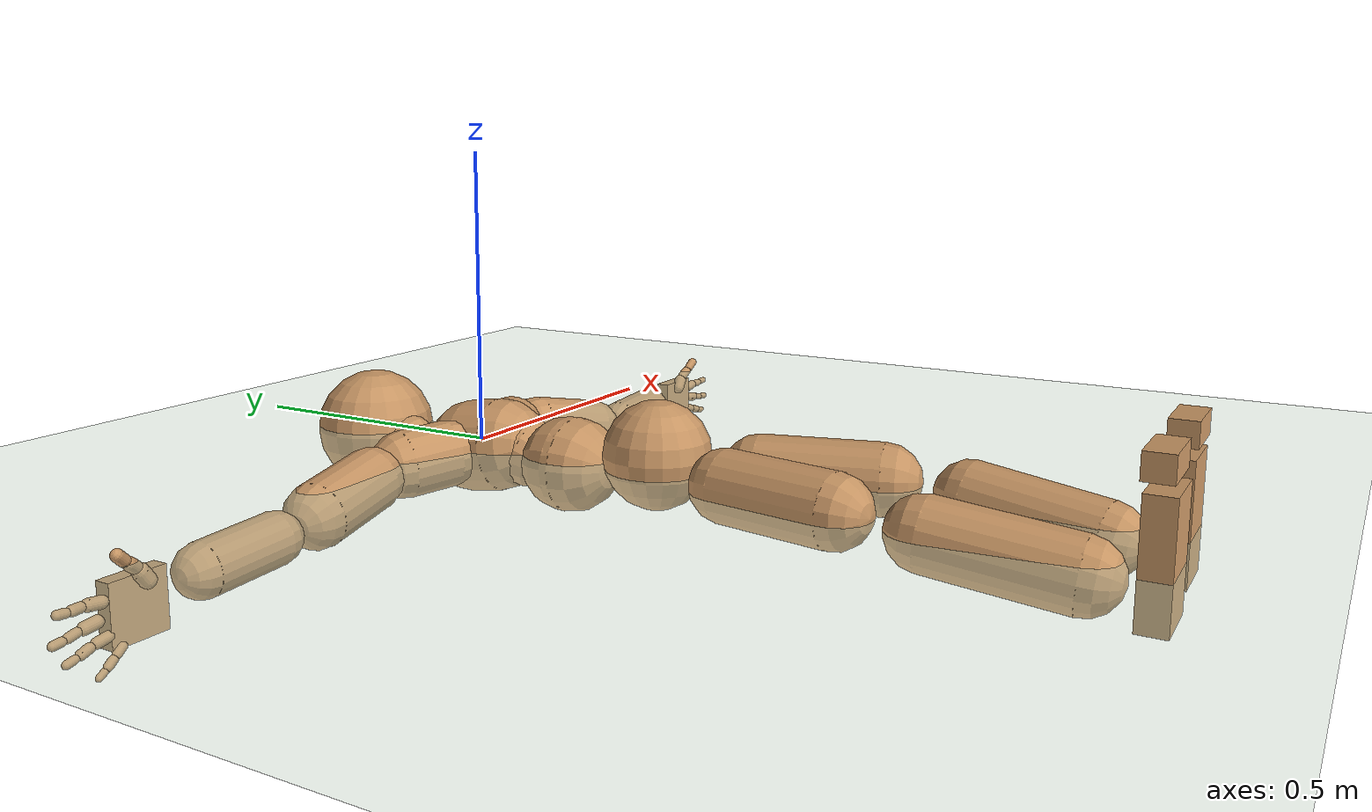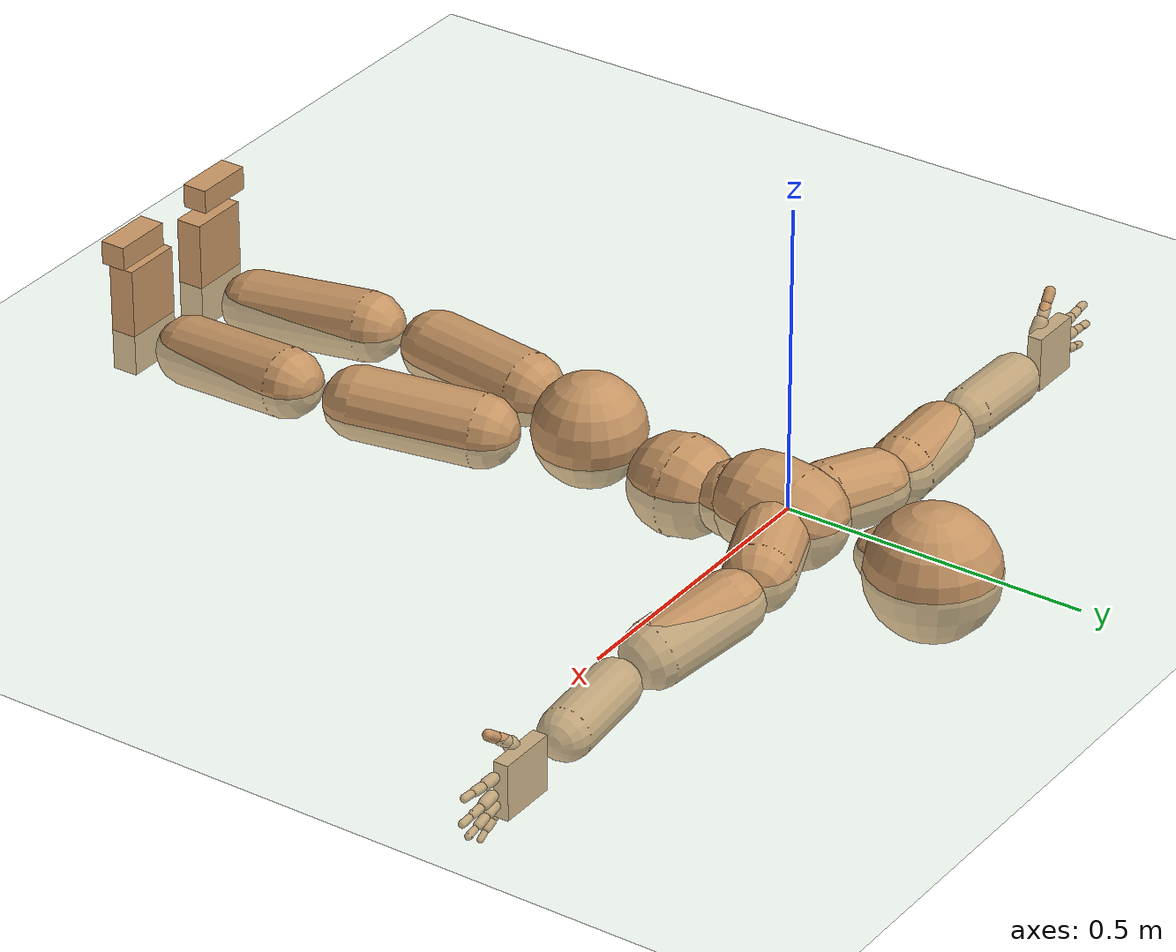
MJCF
<?xml version='1.0' encoding='utf-8'?>
<mujoco model="smplx_mapped_s149">
  <compiler coordinate="local" />
  <default>
    <joint damping="0.0" armature="0.01" stiffness="0.0" limited="true" />
    <geom conaffinity="1" condim="3" contype="7" margin="0.001" rgba="0.8 0.6 .4 1" />
  </default>
  <asset>
    <texture type="skybox" builtin="gradient" rgb1=".4 .5 .6" rgb2="0 0 0" width="100" height="100" />
    <texture builtin="flat" height="1278" mark="cross" markrgb="1 1 1" name="texgeom" random="0.01" rgb1="0.8 0.6 0.4" rgb2="0.8 0.6 0.4" type="cube" width="127" />
    <texture builtin="checker" height="100" name="texplane" rgb1="0 0 0" rgb2="0.8 0.8 0.8" type="2d" width="100" />
    <material name="MatPlane" reflectance="0.5" shininess="1" specular="1" texrepeat="60 60" texture="texplane" />
    <material name="geom" texture="texgeom" texuniform="true" />
  </asset>
  <worldbody>
    <light cutoff="100" diffuse="1 1 1" dir="-0 0 -1.3" directional="true" exponent="1" pos="0 0 1.3" specular=".1 .1 .1" />
    <geom conaffinity="1" condim="3" name="floor" pos="0 0 0" rgba="0.8 0.9 0.8 1" size="100 100 .2" type="plane" material="MatPlane" />
    <body name="Pelvis" pos="0.0013 -0.3548 0.0197">
      <freejoint name="Pelvis" />
      <geom type="sphere" contype="1" conaffinity="1" density="4629.6296296296305" size="0.09" pos="0.0000 0.0000 0.0000" name="Pelvis" />
      <body name="L_Hip" pos="0.0533 -0.0855 -0.0214">
        <joint name="L_Hip_x" type="hinge" pos="0 0 0" axis="1 0 0" stiffness="800" damping="80" armature="0.02" range="-180.00 180.00" />
        <joint name="L_Hip_y" type="hinge" pos="0 0 0" axis="0 1 0" stiffness="800" damping="80" armature="0.02" range="-180.00 180.00" />
        <joint name="L_Hip_z" type="hinge" pos="0 0 0" axis="0 0 1" stiffness="800" damping="80" armature="0.02" range="-180.00 180.00" />
        <geom type="capsule" contype="1" conaffinity="1" density="2040.816327" fromto="0.0133 -0.0658 0.0010 0.0531 -0.2631 0.0041" size="0.059" />
        <body name="L_Knee" pos="0.0664 -0.3289 0.0051">
          <joint name="L_Knee_x" type="hinge" pos="0 0 0" axis="1 0 0" stiffness="800" damping="80" armature="0.02" range="-180.00 180.00" />
          <joint name="L_Knee_y" type="hinge" pos="0 0 0" axis="0 1 0" stiffness="800" damping="80" armature="0.02" range="-180.00 180.00" />
          <joint name="L_Knee_z" type="hinge" pos="0 0 0" axis="0 0 1" stiffness="800" damping="80" armature="0.02" range="-180.00 180.00" />
          <geom type="capsule" contype="1" conaffinity="1" density="1234.567901" fromto="-0.0094 -0.0690 -0.0079 -0.0375 -0.2759 -0.0314" size="0.0564" />
          <body name="L_Ankle" pos="-0.0469 -0.3449 -0.0393">
            <joint name="L_Ankle_x" type="hinge" pos="0 0 0" axis="1 0 0" stiffness="800" damping="80" armature="0.02" range="-180.00 180.00" />
            <joint name="L_Ankle_y" type="hinge" pos="0 0 0" axis="0 1 0" stiffness="800" damping="80" armature="0.02" range="-180.00 180.00" />
            <joint name="L_Ankle_z" type="hinge" pos="0 0 0" axis="0 0 1" stiffness="800" damping="80" armature="0.02" range="-180.00 180.00" />
            <geom type="box" contype="1" conaffinity="1" density="1000" pos="0.0115 -0.0234 0.0566" size="0.0502 0.0216 0.0909" quat="1.0000 0.0000 0.0000 0.0000" />
            <body name="L_Toe" pos="0.0410 -0.0466 0.1205">
              <joint name="L_Toe_x" type="hinge" pos="0 0 0" axis="1 0 0" stiffness="500" damping="50" armature="0.02" range="-180.00 180.00" />
              <joint name="L_Toe_y" type="hinge" pos="0 0 0" axis="0 1 0" stiffness="500" damping="50" armature="0.02" range="-180.00 180.00" />
              <joint name="L_Toe_z" type="hinge" pos="0 0 0" axis="0 0 1" stiffness="500" damping="50" armature="0.02" range="-180.00 180.00" />
              <geom type="box" contype="1" conaffinity="1" density="1000" pos="-0.0115 0.0227 0.0576" size="0.0493 0.0209 0.0194" quat="1.0000 0.0000 0.0000 0.0000" />
            </body>
          </body>
        </body>
      </body>
      <body name="R_Hip" pos="-0.0554 -0.0960 -0.0123">
        <joint name="R_Hip_x" type="hinge" pos="0 0 0" axis="1 0 0" stiffness="800" damping="80" armature="0.02" range="-180.00 180.00" />
        <joint name="R_Hip_y" type="hinge" pos="0 0 0" axis="0 1 0" stiffness="800" damping="80" armature="0.02" range="-180.00 180.00" />
        <joint name="R_Hip_z" type="hinge" pos="0 0 0" axis="0 0 1" stiffness="800" damping="80" armature="0.02" range="-180.00 180.00" />
        <geom type="capsule" contype="1" conaffinity="1" density="2040.816327" fromto="-0.0099 -0.0629 -0.0007 -0.0396 -0.2516 -0.0028" size="0.0588" />
        <body name="R_Knee" pos="-0.0495 -0.3145 -0.0035">
          <joint name="R_Knee_x" type="hinge" pos="0 0 0" axis="1 0 0" stiffness="800" damping="80" armature="0.02" range="-180.00 180.00" />
          <joint name="R_Knee_y" type="hinge" pos="0 0 0" axis="0 1 0" stiffness="800" damping="80" armature="0.02" range="-180.00 180.00" />
          <joint name="R_Knee_z" type="hinge" pos="0 0 0" axis="0 0 1" stiffness="800" damping="80" armature="0.02" range="-180.00 180.00" />
          <geom type="capsule" contype="1" conaffinity="1" density="1234.567901" fromto="0.0036 -0.0710 -0.0080 0.0143 -0.2838 -0.0321" size="0.0564" />
          <body name="R_Ankle" pos="0.0179 -0.3548 -0.0402">
            <joint name="R_Ankle_x" type="hinge" pos="0 0 0" axis="1 0 0" stiffness="800" damping="80" armature="0.02" range="-180.00 180.00" />
            <joint name="R_Ankle_y" type="hinge" pos="0 0 0" axis="0 1 0" stiffness="800" damping="80" armature="0.02" range="-180.00 180.00" />
            <joint name="R_Ankle_z" type="hinge" pos="0 0 0" axis="0 0 1" stiffness="800" damping="80" armature="0.02" range="-180.00 180.00" />
            <geom type="box" contype="1" conaffinity="1" density="1000" pos="-0.0091 -0.0250 0.0535" size="0.0502 0.0216 0.0909" quat="1.0000 0.0000 0.0000 0.0000" />
            <body name="R_Toe" pos="-0.0320 -0.0467 0.1271">
              <joint name="R_Toe_x" type="hinge" pos="0 0 0" axis="1 0 0" stiffness="500" damping="50" armature="0.02" range="-180.00 180.00" />
              <joint name="R_Toe_y" type="hinge" pos="0 0 0" axis="0 1 0" stiffness="500" damping="50" armature="0.02" range="-180.00 180.00" />
              <joint name="R_Toe_z" type="hinge" pos="0 0 0" axis="0 0 1" stiffness="500" damping="50" armature="0.02" range="-180.00 180.00" />
              <geom type="box" contype="1" conaffinity="1" density="1000" pos="0.0091 0.0243 0.0545" size="0.0493 0.0209 0.0194" quat="1.0000 0.0000 0.0000 0.0000" />
            </body>
          </body>
        </body>
      </body>
      <body name="Torso" pos="-0.0026 0.0994 -0.0385">
        <joint name="Torso_x" type="hinge" pos="0 0 0" axis="1 0 0" stiffness="1000" damping="100" armature="0.02" range="-180.00 180.00" />
        <joint name="Torso_y" type="hinge" pos="0 0 0" axis="0 1 0" stiffness="1000" damping="100" armature="0.02" range="-180.00 180.00" />
        <joint name="Torso_z" type="hinge" pos="0 0 0" axis="0 0 1" stiffness="1000" damping="100" armature="0.02" range="-180.00 180.00" />
        <geom type="capsule" contype="1" conaffinity="1" density="1100" fromto="0.0041 0.0624 -0.0005 0.0050 0.0762 -0.0006" size="0.08" />
        <body name="Spine" pos="0.0091 0.1386 -0.0010">
          <joint name="Spine_x" type="hinge" pos="0 0 0" axis="1 0 0" stiffness="1000" damping="100" armature="0.02" range="-180.00 180.00" />
          <joint name="Spine_y" type="hinge" pos="0 0 0" axis="0 1 0" stiffness="1000" damping="100" armature="0.02" range="-180.00 180.00" />
          <joint name="Spine_z" type="hinge" pos="0 0 0" axis="0 0 1" stiffness="1000" damping="100" armature="0.02" range="-180.00 180.00" />
          <geom type="capsule" contype="1" conaffinity="1" density="1100" fromto="-0.0027 0.0240 0.0089 -0.0033 0.0293 0.0108" size="0.06" />
          <body name="Chest" pos="-0.0059 0.0533 0.0197">
            <joint name="Chest_x" type="hinge" pos="0 0 0" axis="1 0 0" stiffness="1000" damping="100" armature="0.02" range="-180.00 180.00" />
            <joint name="Chest_y" type="hinge" pos="0 0 0" axis="0 1 0" stiffness="1000" damping="100" armature="0.02" range="-180.00 180.00" />
            <joint name="Chest_z" type="hinge" pos="0 0 0" axis="0 0 1" stiffness="1000" damping="100" armature="0.02" range="-180.00 180.00" />
            <geom type="capsule" contype="1" conaffinity="1" density="1100" fromto="-0.0010 0.0196 -0.0029 -0.0041 0.0785 -0.0114" size="0.08" />
            <body name="Neck" pos="-0.0103 0.1529 -0.0280">
              <joint name="Neck_x" type="hinge" pos="0 0 0" axis="1 0 0" stiffness="500" damping="50" armature="0.02" range="-180.00 180.00" />
              <joint name="Neck_y" type="hinge" pos="0 0 0" axis="0 1 0" stiffness="500" damping="50" armature="0.02" range="-180.00 180.00" />
              <joint name="Neck_z" type="hinge" pos="0 0 0" axis="0 0 1" stiffness="500" damping="50" armature="0.02" range="-180.00 180.00" />
              <geom type="capsule" contype="1" conaffinity="1" density="1000" fromto="0.0106 0.0767 0.0077 0.0129 0.0937 0.0094" size="0.0437" />
              <body name="Head" pos="0.0235 0.1704 0.0172">
                <joint name="Head_x" type="hinge" pos="0 0 0" axis="1 0 0" stiffness="500" damping="50" armature="0.02" range="-180.00 180.00" />
                <joint name="Head_y" type="hinge" pos="0 0 0" axis="0 1 0" stiffness="500" damping="50" armature="0.02" range="-180.00 180.00" />
                <joint name="Head_z" type="hinge" pos="0 0 0" axis="0 0 1" stiffness="500" damping="50" armature="0.02" range="-180.00 180.00" />
                <geom type="sphere" contype="1" conaffinity="1" density="1000" size="0.1054" pos="0.0000 0.0000 0.0000" name="Head" />
              </body>
            </body>
            <body name="L_Thorax" pos="0.0416 0.0706 -0.0058">
              <joint name="L_Thorax_x" type="hinge" pos="0 0 0" axis="1 0 0" stiffness="500" damping="50" armature="0.02" range="-180.00 180.00" />
              <joint name="L_Thorax_y" type="hinge" pos="0 0 0" axis="0 1 0" stiffness="500" damping="50" armature="0.02" range="-180.00 180.00" />
              <joint name="L_Thorax_z" type="hinge" pos="0 0 0" axis="0 0 1" stiffness="500" damping="50" armature="0.02" range="-180.00 180.00" />
              <geom type="capsule" contype="1" conaffinity="1" density="1000" fromto="0.0289 0.0114 -0.0024 0.1158 0.0454 -0.0095" size="0.0564" />
              <body name="L_Shoulder" pos="0.1447 0.0568 -0.0118">
                <joint name="L_Shoulder_x" type="hinge" pos="0 0 0" axis="1 0 0" stiffness="500" damping="50" armature="0.02" range="-180.00 180.00" />
                <joint name="L_Shoulder_y" type="hinge" pos="0 0 0" axis="0 1 0" stiffness="500" damping="50" armature="0.02" range="-180.00 180.00" />
                <joint name="L_Shoulder_z" type="hinge" pos="0 0 0" axis="0 0 1" stiffness="500" damping="50" armature="0.02" range="-180.00 180.00" />
                <geom type="capsule" contype="1" conaffinity="1" density="1000" fromto="0.0453 -0.0134 -0.0093 0.1812 -0.0535 -0.0370" size="0.0533" />
                <body name="L_Elbow" pos="0.2265 -0.0669 -0.0463">
                  <joint name="L_Elbow_x" type="hinge" pos="0 0 0" axis="1 0 0" stiffness="500" damping="50" armature="0.02" range="-180.00 180.00" />
                  <joint name="L_Elbow_y" type="hinge" pos="0 0 0" axis="0 1 0" stiffness="500" damping="50" armature="0.02" range="-180.00 180.00" />
                  <joint name="L_Elbow_z" type="hinge" pos="0 0 0" axis="0 0 1" stiffness="500" damping="50" armature="0.02" range="-180.00 180.00" />
                  <geom type="capsule" contype="1" conaffinity="1" density="1000" fromto="0.0470 0.0047 0.0003 0.1882 0.0188 0.0012" size="0.0418" />
                  <body name="L_Wrist" pos="0.252 0.0232 -0.0025">
                    <joint name="L_Wrist_x" type="hinge" pos="0 0 0" axis="1 0 0" stiffness="300" damping="30" armature="0.02" range="-180.0000 180.0000"/>
                    <joint name="L_Wrist_y" type="hinge" pos="0 0 0" axis="0 1 0" stiffness="300" damping="30" armature="0.02" range="-180.0000 180.0000"/>
                    <joint name="L_Wrist_z" type="hinge" pos="0 0 0" axis="0 0 1" stiffness="300" damping="30" armature="0.02" range="-180.0000 180.0000"/>
                    <geom type="box" density="1198.335972" pos="0.0523 -0.0013 -0.0031" size="0.0484 0.0122 0.046" quat="1.0000 0.0000 0.0000 0.0000" name="L_Wrist"/>
                    <body name="L_Index1" pos="0.1019 -0.0087 0.0194">
                      <joint name="L_Index1_x" type="hinge" pos="0 0 0" axis="1 0 0" stiffness="100" damping="10" armature="0.02" range="-180.0000 180.0000"/>
                      <joint name="L_Index1_y" type="hinge" pos="0 0 0" axis="0 1 0" stiffness="100" damping="10" armature="0.02" range="-180.0000 180.0000"/>
                      <joint name="L_Index1_z" type="hinge" pos="0 0 0" axis="0 0 1" stiffness="100" damping="10" armature="0.02" range="-180.0000 180.0000"/>
                      <geom type="capsule" contype="1" conaffinity="1" density="1000" fromto="0.0064 0.0004 0.0006 0.0256 0.0018 0.0024" size="0.0091" name="L_Index1"/>
                      <body name="L_Index2" pos="0.0319 0.0022 0.003">
                        <joint name="L_Index2_x" type="hinge" pos="0 0 0" axis="1 0 0" stiffness="100" damping="10" armature="0.02" range="-180.0000 180.0000"/>
                        <joint name="L_Index2_y" type="hinge" pos="0 0 0" axis="0 1 0" stiffness="100" damping="10" armature="0.02" range="-180.0000 180.0000"/>
                        <joint name="L_Index2_z" type="hinge" pos="0 0 0" axis="0 0 1" stiffness="100" damping="10" armature="0.02" range="-180.0000 180.0000"/>
                        <geom type="capsule" contype="1" conaffinity="1" density="1000" fromto="0.0045 -0.0005 0.0000 0.0180 -0.0019 0.0000" size="0.0076" name="L_Index2"/>
                        <body name="L_Index3" pos="0.0225 -0.0024 0.0001">
                          <joint name="L_Index3_x" type="hinge" pos="0 0 0" axis="1 0 0" stiffness="100" damping="10" armature="0.02" range="-180.0000 180.0000"/>
                          <joint name="L_Index3_y" type="hinge" pos="0 0 0" axis="0 1 0" stiffness="100" damping="10" armature="0.02" range="-180.0000 180.0000"/>
                          <joint name="L_Index3_z" type="hinge" pos="0 0 0" axis="0 0 1" stiffness="100" damping="10" armature="0.02" range="-180.0000 180.0000"/>
                          <geom type="capsule" contype="1" conaffinity="1" density="1000" fromto="0.0049 -0.0001 0.0004 0.0196 -0.0003 0.0016" size="0.0064" name="L_Index3"/>
                        </body>
                      </body>
                    </body>
                    <body name="L_Middle1" pos="0.1094 -0.0063 -0.004">
                      <joint name="L_Middle1_x" type="hinge" pos="0 0 0" axis="1 0 0" stiffness="100" damping="10" armature="0.02" range="-180.0000 180.0000"/>
                      <joint name="L_Middle1_y" type="hinge" pos="0 0 0" axis="0 1 0" stiffness="100" damping="10" armature="0.02" range="-180.0000 180.0000"/>
                      <joint name="L_Middle1_z" type="hinge" pos="0 0 0" axis="0 0 1" stiffness="100" damping="10" armature="0.02" range="-180.0000 180.0000"/>
                      <geom type="capsule" contype="1" conaffinity="1" density="1000" fromto="0.0061 0.0002 -0.0008 0.0245 0.0006 -0.0032" size="0.0094" name="L_Middle1"/>
                      <body name="L_Middle2" pos="0.0306 0.0008 -0.004">
                        <joint name="L_Middle2_x" type="hinge" pos="0 0 0" axis="1 0 0" stiffness="100" damping="10" armature="0.02" range="-180.0000 180.0000"/>
                        <joint name="L_Middle2_y" type="hinge" pos="0 0 0" axis="0 1 0" stiffness="100" damping="10" armature="0.02" range="-180.0000 180.0000"/>
                        <joint name="L_Middle2_z" type="hinge" pos="0 0 0" axis="0 0 1" stiffness="100" damping="10" armature="0.02" range="-180.0000 180.0000"/>
                        <geom type="capsule" contype="1" conaffinity="1" density="1000" fromto="0.0047 -0.0004 -0.0008 0.0188 -0.0016 -0.0033" size="0.007" name="L_Middle2"/>
                        <body name="L_Middle3" pos="0.0235 -0.002 -0.0041">
                          <joint name="L_Middle3_x" type="hinge" pos="0 0 0" axis="1 0 0" stiffness="100" damping="10" armature="0.02" range="-180.0000 180.0000"/>
                          <joint name="L_Middle3_y" type="hinge" pos="0 0 0" axis="0 1 0" stiffness="100" damping="10" armature="0.02" range="-180.0000 180.0000"/>
                          <joint name="L_Middle3_z" type="hinge" pos="0 0 0" axis="0 0 1" stiffness="100" damping="10" armature="0.02" range="-180.0000 180.0000"/>
                          <geom type="capsule" contype="1" conaffinity="1" density="1000" fromto="0.0051 -0.0000 -0.0004 0.0204 -0.0000 -0.0017" size="0.0061" name="L_Middle3"/>
                        </body>
                      </body>
                    </body>
                    <body name="L_Pinky1" pos="0.084 -0.0145 -0.0437">
                      <joint name="L_Pinky1_x" type="hinge" pos="0 0 0" axis="1 0 0" stiffness="100" damping="10" armature="0.02" range="-180.0000 180.0000"/>
                      <joint name="L_Pinky1_y" type="hinge" pos="0 0 0" axis="0 1 0" stiffness="100" damping="10" armature="0.02" range="-180.0000 180.0000"/>
                      <joint name="L_Pinky1_z" type="hinge" pos="0 0 0" axis="0 0 1" stiffness="100" damping="10" armature="0.02" range="-180.0000 180.0000"/>
                      <geom type="capsule" contype="1" conaffinity="1" density="1000" fromto="0.0031 -0.0002 -0.0024 0.0124 -0.0009 -0.0096" size="0.0067" name="L_Pinky1"/>
                      <body name="L_Pinky2" pos="0.0155 -0.0011 -0.012">
                        <joint name="L_Pinky2_x" type="hinge" pos="0 0 0" axis="1 0 0" stiffness="100" damping="10" armature="0.02" range="-180.0000 180.0000"/>
                        <joint name="L_Pinky2_y" type="hinge" pos="0 0 0" axis="0 1 0" stiffness="100" damping="10" armature="0.02" range="-180.0000 180.0000"/>
                        <joint name="L_Pinky2_z" type="hinge" pos="0 0 0" axis="0 0 1" stiffness="100" damping="10" armature="0.02" range="-180.0000 180.0000"/>
                        <geom type="capsule" contype="1" conaffinity="1" density="1000" fromto="0.0031 -0.0003 -0.0022 0.0124 -0.0013 -0.0090" size="0.0065" name="L_Pinky2"/>
                        <body name="L_Pinky3" pos="0.0155 -0.0017 -0.0112">
                          <joint name="L_Pinky3_x" type="hinge" pos="0 0 0" axis="1 0 0" stiffness="100" damping="10" armature="0.02" range="-180.0000 180.0000"/>
                          <joint name="L_Pinky3_y" type="hinge" pos="0 0 0" axis="0 1 0" stiffness="100" damping="10" armature="0.02" range="-180.0000 180.0000"/>
                          <joint name="L_Pinky3_z" type="hinge" pos="0 0 0" axis="0 0 1" stiffness="100" damping="10" armature="0.02" range="-180.0000 180.0000"/>
                          <geom type="capsule" contype="1" conaffinity="1" density="1000" fromto="0.0035 0.0001 -0.0018 0.0140 0.0003 -0.0074" size="0.005" name="L_Pinky3"/>
                        </body>
                      </body>
                    </body>
                    <body name="L_Ring1" pos="0.0974 -0.0093 -0.0273">
                      <joint name="L_Ring1_x" type="hinge" pos="0 0 0" axis="1 0 0" stiffness="100" damping="10" armature="0.02" range="-180.0000 180.0000"/>
                      <joint name="L_Ring1_y" type="hinge" pos="0 0 0" axis="0 1 0" stiffness="100" damping="10" armature="0.02" range="-180.0000 180.0000"/>
                      <joint name="L_Ring1_z" type="hinge" pos="0 0 0" axis="0 0 1" stiffness="100" damping="10" armature="0.02" range="-180.0000 180.0000"/>
                      <geom type="capsule" contype="1" conaffinity="1" density="1000" fromto="0.0056 0.0003 -0.0011 0.0224 0.0012 -0.0042" size="0.008" name="L_Ring1"/>
                      <body name="L_Ring2" pos="0.028 0.0015 -0.0053">
                        <joint name="L_Ring2_x" type="hinge" pos="0 0 0" axis="1 0 0" stiffness="100" damping="10" armature="0.02" range="-180.0000 180.0000"/>
                        <joint name="L_Ring2_y" type="hinge" pos="0 0 0" axis="0 1 0" stiffness="100" damping="10" armature="0.02" range="-180.0000 180.0000"/>
                        <joint name="L_Ring2_z" type="hinge" pos="0 0 0" axis="0 0 1" stiffness="100" damping="10" armature="0.02" range="-180.0000 180.0000"/>
                        <geom type="capsule" contype="1" conaffinity="1" density="1000" fromto="0.0046 -0.0003 -0.0014 0.0183 -0.0012 -0.0057" size="0.0074" name="L_Ring2"/>
                        <body name="L_Ring3" pos="0.0228 -0.0015 -0.0071">
                          <joint name="L_Ring3_x" type="hinge" pos="0 0 0" axis="1 0 0" stiffness="100" damping="10" armature="0.02" range="-180.0000 180.0000"/>
                          <joint name="L_Ring3_y" type="hinge" pos="0 0 0" axis="0 1 0" stiffness="100" damping="10" armature="0.02" range="-180.0000 180.0000"/>
                          <joint name="L_Ring3_z" type="hinge" pos="0 0 0" axis="0 0 1" stiffness="100" damping="10" armature="0.02" range="-180.0000 180.0000"/>
                          <geom type="capsule" contype="1" conaffinity="1" density="1000" fromto="0.0050 0.0001 -0.0010 0.0199 0.0004 -0.0041" size="0.0057" name="L_Ring3"/>
                        </body>
                      </body>
                    </body>
                    <body name="L_Thumb1" pos="0.0406 -0.018 0.0256">
                      <joint name="L_Thumb1_x" type="hinge" pos="0 0 0" axis="1 0 0" stiffness="100" damping="10" armature="0.02" range="-180.0000 180.0000"/>
                      <joint name="L_Thumb1_y" type="hinge" pos="0 0 0" axis="0 1 0" stiffness="100" damping="10" armature="0.02" range="-180.0000 180.0000"/>
                      <joint name="L_Thumb1_z" type="hinge" pos="0 0 0" axis="0 0 1" stiffness="100" damping="10" armature="0.02" range="-180.0000 180.0000"/>
                      <geom type="capsule" contype="1" conaffinity="1" density="1000" fromto="0.0034 0.0002 0.0050 0.0136 0.0008 0.0200" size="0.012" name="L_Thumb1"/>
                      <body name="L_Thumb2" pos="0.017 0.001 0.025">
                        <joint name="L_Thumb2_x" type="hinge" pos="0 0 0" axis="1 0 0" stiffness="100" damping="10" armature="0.02" range="-180.0000 180.0000"/>
                        <joint name="L_Thumb2_y" type="hinge" pos="0 0 0" axis="0 1 0" stiffness="100" damping="10" armature="0.02" range="-180.0000 180.0000"/>
                        <joint name="L_Thumb2_z" type="hinge" pos="0 0 0" axis="0 0 1" stiffness="100" damping="10" armature="0.02" range="-180.0000 180.0000"/>
                        <geom type="capsule" contype="1" conaffinity="1" density="1000" fromto="0.0041 -0.0010 0.0031 0.0164 -0.0041 0.0124" size="0.0095" name="L_Thumb2"/>
                        <body name="L_Thumb3" pos="0.0205 -0.0052 0.0155">
                          <joint name="L_Thumb3_x" type="hinge" pos="0 0 0" axis="1 0 0" stiffness="100" damping="10" armature="0.02" range="-180.0000 180.0000"/>
                          <joint name="L_Thumb3_y" type="hinge" pos="0 0 0" axis="0 1 0" stiffness="100" damping="10" armature="0.02" range="-180.0000 180.0000"/>
                          <joint name="L_Thumb3_z" type="hinge" pos="0 0 0" axis="0 0 1" stiffness="100" damping="10" armature="0.02" range="-180.0000 180.0000"/>
                          <geom type="capsule" contype="1" conaffinity="1" density="1000" fromto="0.0045 -0.0006 0.0035 0.0180 -0.0025 0.0140" size="0.0087" name="L_Thumb3"/>
                        </body>
                      </body>
                    </body>
                  </body>
                </body>
              </body>
            </body>
            <body name="R_Thorax" pos="-0.0466 0.0709 -0.0090">
              <joint name="R_Thorax_x" type="hinge" pos="0 0 0" axis="1 0 0" stiffness="500" damping="50" armature="0.02" range="-180.00 180.00" />
              <joint name="R_Thorax_y" type="hinge" pos="0 0 0" axis="0 1 0" stiffness="500" damping="50" armature="0.02" range="-180.00 180.00" />
              <joint name="R_Thorax_z" type="hinge" pos="0 0 0" axis="0 0 1" stiffness="500" damping="50" armature="0.02" range="-180.00 180.00" />
              <geom type="capsule" contype="1" conaffinity="1" density="1000" fromto="-0.0266 0.0110 -0.0021 -0.1066 0.0439 -0.0084" size="0.0576" />
              <body name="R_Shoulder" pos="-0.1332 0.0548 -0.0105">
                <joint name="R_Shoulder_x" type="hinge" pos="0 0 0" axis="1 0 0" stiffness="500" damping="50" armature="0.02" range="-180.00 180.00" />
                <joint name="R_Shoulder_y" type="hinge" pos="0 0 0" axis="0 1 0" stiffness="500" damping="50" armature="0.02" range="-180.00 180.00" />
                <joint name="R_Shoulder_z" type="hinge" pos="0 0 0" axis="0 0 1" stiffness="500" damping="50" armature="0.02" range="-180.00 180.00" />
                <geom type="capsule" contype="1" conaffinity="1" density="1000" fromto="-0.0486 -0.0071 -0.0063 -0.1943 -0.0285 -0.0253" size="0.0538" />
                <body name="R_Elbow" pos="-0.2429 -0.0356 -0.0316">
                  <joint name="R_Elbow_x" type="hinge" pos="0 0 0" axis="1 0 0" stiffness="500" damping="50" armature="0.02" range="-180.00 180.00" />
                  <joint name="R_Elbow_y" type="hinge" pos="0 0 0" axis="0 1 0" stiffness="500" damping="50" armature="0.02" range="-180.00 180.00" />
                  <joint name="R_Elbow_z" type="hinge" pos="0 0 0" axis="0 0 1" stiffness="500" damping="50" armature="0.02" range="-180.00 180.00" />
                  <geom type="capsule" contype="1" conaffinity="1" density="1000" fromto="-0.0459 -0.0005 -0.0021 -0.1834 -0.0021 -0.0083" size="0.042" />
                  <body name="R_Wrist" pos="-0.2493 -0.0045 -0.0153">
                    <joint name="R_Wrist_x" type="hinge" pos="0 0 0" axis="1 0 0" stiffness="300" damping="30" armature="0.02" range="-180.0000 180.0000"/>
                    <joint name="R_Wrist_y" type="hinge" pos="0 0 0" axis="0 1 0" stiffness="300" damping="30" armature="0.02" range="-180.0000 180.0000"/>
                    <joint name="R_Wrist_z" type="hinge" pos="0 0 0" axis="0 0 1" stiffness="300" damping="30" armature="0.02" range="-180.0000 180.0000"/>
                    <geom type="box" density="1230.822844" pos="-0.0537 -0.0044 -0.0029" size="0.0454 0.0122 0.046" quat="1.0000 0.0000 0.0000 0.0000" name="R_Wrist"/>
                    <body name="R_Index1" pos="-0.0999 -0.0118 0.0196">
                      <joint name="R_Index1_x" type="hinge" pos="0 0 0" axis="1 0 0" stiffness="100" damping="10" armature="0.02" range="-180.0000 180.0000"/>
                      <joint name="R_Index1_y" type="hinge" pos="0 0 0" axis="0 1 0" stiffness="100" damping="10" armature="0.02" range="-180.0000 180.0000"/>
                      <joint name="R_Index1_z" type="hinge" pos="0 0 0" axis="0 0 1" stiffness="100" damping="10" armature="0.02" range="-180.0000 180.0000"/>
                      <geom type="capsule" contype="1" conaffinity="1" density="1000" fromto="-0.0064 0.0004 0.0006 -0.0256 0.0018 0.0024" size="0.0091" name="R_Index1"/>
                      <body name="R_Index2" pos="-0.0319 0.0022 0.003">
                        <joint name="R_Index2_x" type="hinge" pos="0 0 0" axis="1 0 0" stiffness="100" damping="10" armature="0.02" range="-180.0000 180.0000"/>
                        <joint name="R_Index2_y" type="hinge" pos="0 0 0" axis="0 1 0" stiffness="100" damping="10" armature="0.02" range="-180.0000 180.0000"/>
                        <joint name="R_Index2_z" type="hinge" pos="0 0 0" axis="0 0 1" stiffness="100" damping="10" armature="0.02" range="-180.0000 180.0000"/>
                        <geom type="capsule" contype="1" conaffinity="1" density="1000" fromto="-0.0045 -0.0005 0.0000 -0.0180 -0.0019 0.0000" size="0.0076" name="R_Index2"/>
                        <body name="R_Index3" pos="-0.0225 -0.0023 0.0001">
                          <joint name="R_Index3_x" type="hinge" pos="0 0 0" axis="1 0 0" stiffness="100" damping="10" armature="0.02" range="-180.0000 180.0000"/>
                          <joint name="R_Index3_y" type="hinge" pos="0 0 0" axis="0 1 0" stiffness="100" damping="10" armature="0.02" range="-180.0000 180.0000"/>
                          <joint name="R_Index3_z" type="hinge" pos="0 0 0" axis="0 0 1" stiffness="100" damping="10" armature="0.02" range="-180.0000 180.0000"/>
                          <geom type="capsule" contype="1" conaffinity="1" density="1000" fromto="-0.0041 -0.0001 0.0004 -0.0164 -0.0003 0.0016" size="0.0067" name="R_Index3"/>
                        </body>
                      </body>
                    </body>
                    <body name="R_Middle1" pos="-0.1074 -0.0094 -0.0037">
                      <joint name="R_Middle1_x" type="hinge" pos="0 0 0" axis="1 0 0" stiffness="100" damping="10" armature="0.02" range="-180.0000 180.0000"/>
                      <joint name="R_Middle1_y" type="hinge" pos="0 0 0" axis="0 1 0" stiffness="100" damping="10" armature="0.02" range="-180.0000 180.0000"/>
                      <joint name="R_Middle1_z" type="hinge" pos="0 0 0" axis="0 0 1" stiffness="100" damping="10" armature="0.02" range="-180.0000 180.0000"/>
                      <geom type="capsule" contype="1" conaffinity="1" density="1000" fromto="-0.0061 0.0002 -0.0008 -0.0245 0.0006 -0.0032" size="0.0094" name="R_Middle1"/>
                      <body name="R_Middle2" pos="-0.0306 0.0008 -0.004">
                        <joint name="R_Middle2_x" type="hinge" pos="0 0 0" axis="1 0 0" stiffness="100" damping="10" armature="0.02" range="-180.0000 180.0000"/>
                        <joint name="R_Middle2_y" type="hinge" pos="0 0 0" axis="0 1 0" stiffness="100" damping="10" armature="0.02" range="-180.0000 180.0000"/>
                        <joint name="R_Middle2_z" type="hinge" pos="0 0 0" axis="0 0 1" stiffness="100" damping="10" armature="0.02" range="-180.0000 180.0000"/>
                        <geom type="capsule" contype="1" conaffinity="1" density="1000" fromto="-0.0047 -0.0004 -0.0008 -0.0188 -0.0016 -0.0033" size="0.007" name="R_Middle2"/>
                        <body name="R_Middle3" pos="-0.0235 -0.002 -0.0041">
                          <joint name="R_Middle3_x" type="hinge" pos="0 0 0" axis="1 0 0" stiffness="100" damping="10" armature="0.02" range="-180.0000 180.0000"/>
                          <joint name="R_Middle3_y" type="hinge" pos="0 0 0" axis="0 1 0" stiffness="100" damping="10" armature="0.02" range="-180.0000 180.0000"/>
                          <joint name="R_Middle3_z" type="hinge" pos="0 0 0" axis="0 0 1" stiffness="100" damping="10" armature="0.02" range="-180.0000 180.0000"/>
                          <geom type="capsule" contype="1" conaffinity="1" density="1000" fromto="-0.0043 -0.0000 -0.0004 -0.0172 -0.0000 -0.0017" size="0.0064" name="R_Middle3"/>
                        </body>
                      </body>
                    </body>
                    <body name="R_Pinky1" pos="-0.082 -0.0176 -0.0435">
                      <joint name="R_Pinky1_x" type="hinge" pos="0 0 0" axis="1 0 0" stiffness="100" damping="10" armature="0.02" range="-180.0000 180.0000"/>
                      <joint name="R_Pinky1_y" type="hinge" pos="0 0 0" axis="0 1 0" stiffness="100" damping="10" armature="0.02" range="-180.0000 180.0000"/>
                      <joint name="R_Pinky1_z" type="hinge" pos="0 0 0" axis="0 0 1" stiffness="100" damping="10" armature="0.02" range="-180.0000 180.0000"/>
                      <geom type="capsule" contype="1" conaffinity="1" density="1000" fromto="-0.0031 -0.0002 -0.0024 -0.0124 -0.0009 -0.0096" size="0.0067" name="R_Pinky1"/>
                      <body name="R_Pinky2" pos="-0.0155 -0.0011 -0.012">
                        <joint name="R_Pinky2_x" type="hinge" pos="0 0 0" axis="1 0 0" stiffness="100" damping="10" armature="0.02" range="-180.0000 180.0000"/>
                        <joint name="R_Pinky2_y" type="hinge" pos="0 0 0" axis="0 1 0" stiffness="100" damping="10" armature="0.02" range="-180.0000 180.0000"/>
                        <joint name="R_Pinky2_z" type="hinge" pos="0 0 0" axis="0 0 1" stiffness="100" damping="10" armature="0.02" range="-180.0000 180.0000"/>
                        <geom type="capsule" contype="1" conaffinity="1" density="1000" fromto="-0.0031 -0.0003 -0.0022 -0.0124 -0.0013 -0.0090" size="0.0065" name="R_Pinky2"/>
                        <body name="R_Pinky3" pos="-0.0155 -0.0017 -0.0112">
                          <joint name="R_Pinky3_x" type="hinge" pos="0 0 0" axis="1 0 0" stiffness="100" damping="10" armature="0.02" range="-180.0000 180.0000"/>
                          <joint name="R_Pinky3_y" type="hinge" pos="0 0 0" axis="0 1 0" stiffness="100" damping="10" armature="0.02" range="-180.0000 180.0000"/>
                          <joint name="R_Pinky3_z" type="hinge" pos="0 0 0" axis="0 0 1" stiffness="100" damping="10" armature="0.02" range="-180.0000 180.0000"/>
                          <geom type="capsule" contype="1" conaffinity="1" density="1000" fromto="-0.0027 0.0001 -0.0018 -0.0108 0.0003 -0.0074" size="0.0052" name="R_Pinky3"/>
                        </body>
                      </body>
                    </body>
                    <body name="R_Ring1" pos="-0.0954 -0.0124 -0.0271">
                      <joint name="R_Ring1_x" type="hinge" pos="0 0 0" axis="1 0 0" stiffness="100" damping="10" armature="0.02" range="-180.0000 180.0000"/>
                      <joint name="R_Ring1_y" type="hinge" pos="0 0 0" axis="0 1 0" stiffness="100" damping="10" armature="0.02" range="-180.0000 180.0000"/>
                      <joint name="R_Ring1_z" type="hinge" pos="0 0 0" axis="0 0 1" stiffness="100" damping="10" armature="0.02" range="-180.0000 180.0000"/>
                      <geom type="capsule" contype="1" conaffinity="1" density="1000" fromto="-0.0056 0.0003 -0.0011 -0.0224 0.0012 -0.0042" size="0.008" name="R_Ring1"/>
                      <body name="R_Ring2" pos="-0.028 0.0015 -0.0053">
                        <joint name="R_Ring2_x" type="hinge" pos="0 0 0" axis="1 0 0" stiffness="100" damping="10" armature="0.02" range="-180.0000 180.0000"/>
                        <joint name="R_Ring2_y" type="hinge" pos="0 0 0" axis="0 1 0" stiffness="100" damping="10" armature="0.02" range="-180.0000 180.0000"/>
                        <joint name="R_Ring2_z" type="hinge" pos="0 0 0" axis="0 0 1" stiffness="100" damping="10" armature="0.02" range="-180.0000 180.0000"/>
                        <geom type="capsule" contype="1" conaffinity="1" density="1000" fromto="-0.0046 -0.0003 -0.0014 -0.0183 -0.0012 -0.0057" size="0.0074" name="R_Ring2"/>
                        <body name="R_Ring3" pos="-0.0228 -0.0015 -0.0071">
                          <joint name="R_Ring3_x" type="hinge" pos="0 0 0" axis="1 0 0" stiffness="100" damping="10" armature="0.02" range="-180.0000 180.0000"/>
                          <joint name="R_Ring3_y" type="hinge" pos="0 0 0" axis="0 1 0" stiffness="100" damping="10" armature="0.02" range="-180.0000 180.0000"/>
                          <joint name="R_Ring3_z" type="hinge" pos="0 0 0" axis="0 0 1" stiffness="100" damping="10" armature="0.02" range="-180.0000 180.0000"/>
                          <geom type="capsule" contype="1" conaffinity="1" density="1000" fromto="-0.0042 0.0001 -0.0010 -0.0167 0.0004 -0.0041" size="0.006" name="R_Ring3"/>
                        </body>
                      </body>
                    </body>
                    <body name="R_Thumb1" pos="-0.0386 -0.0211 0.0259">
                      <joint name="R_Thumb1_x" type="hinge" pos="0 0 0" axis="1 0 0" stiffness="100" damping="10" armature="0.02" range="-180.0000 180.0000"/>
                      <joint name="R_Thumb1_y" type="hinge" pos="0 0 0" axis="0 1 0" stiffness="100" damping="10" armature="0.02" range="-180.0000 180.0000"/>
                      <joint name="R_Thumb1_z" type="hinge" pos="0 0 0" axis="0 0 1" stiffness="100" damping="10" armature="0.02" range="-180.0000 180.0000"/>
                      <geom type="capsule" contype="1" conaffinity="1" density="1000" fromto="-0.0034 0.0002 0.0050 -0.0136 0.0008 0.0200" size="0.012" name="R_Thumb1"/>
                      <body name="R_Thumb2" pos="-0.017 0.001 0.025">
                        <joint name="R_Thumb2_x" type="hinge" pos="0 0 0" axis="1 0 0" stiffness="100" damping="10" armature="0.02" range="-180.0000 180.0000"/>
                        <joint name="R_Thumb2_y" type="hinge" pos="0 0 0" axis="0 1 0" stiffness="100" damping="10" armature="0.02" range="-180.0000 180.0000"/>
                        <joint name="R_Thumb2_z" type="hinge" pos="0 0 0" axis="0 0 1" stiffness="100" damping="10" armature="0.02" range="-180.0000 180.0000"/>
                        <geom type="capsule" contype="1" conaffinity="1" density="1000" fromto="-0.0041 -0.0010 0.0031 -0.0164 -0.0041 0.0124" size="0.0095" name="R_Thumb2"/>
                        <body name="R_Thumb3" pos="-0.0205 -0.0052 0.0155">
                          <joint name="R_Thumb3_x" type="hinge" pos="0 0 0" axis="1 0 0" stiffness="100" damping="10" armature="0.02" range="-180.0000 180.0000"/>
                          <joint name="R_Thumb3_y" type="hinge" pos="0 0 0" axis="0 1 0" stiffness="100" damping="10" armature="0.02" range="-180.0000 180.0000"/>
                          <joint name="R_Thumb3_z" type="hinge" pos="0 0 0" axis="0 0 1" stiffness="100" damping="10" armature="0.02" range="-180.0000 180.0000"/>
                          <geom type="capsule" contype="1" conaffinity="1" density="1000" fromto="-0.0037 -0.0006 0.0035 -0.0148 -0.0025 0.0140" size="0.009" name="R_Thumb3"/>
                        </body>
                      </body>
                    </body>
                  </body>
                </body>
              </body>
            </body>
          </body>
        </body>
      </body>
    </body>
  </worldbody>
  <actuator>
    <motor name="L_Hip_x" joint="L_Hip_x" gear="1" />
    <motor name="L_Hip_y" joint="L_Hip_y" gear="1" />
    <motor name="L_Hip_z" joint="L_Hip_z" gear="1" />
    <motor name="L_Knee_x" joint="L_Knee_x" gear="1" />
    <motor name="L_Knee_y" joint="L_Knee_y" gear="1" />
    <motor name="L_Knee_z" joint="L_Knee_z" gear="1" />
    <motor name="L_Ankle_x" joint="L_Ankle_x" gear="1" />
    <motor name="L_Ankle_y" joint="L_Ankle_y" gear="1" />
    <motor name="L_Ankle_z" joint="L_Ankle_z" gear="1" />
    <motor name="L_Toe_x" joint="L_Toe_x" gear="1" />
    <motor name="L_Toe_y" joint="L_Toe_y" gear="1" />
    <motor name="L_Toe_z" joint="L_Toe_z" gear="1" />
    <motor name="R_Hip_x" joint="R_Hip_x" gear="1" />
    <motor name="R_Hip_y" joint="R_Hip_y" gear="1" />
    <motor name="R_Hip_z" joint="R_Hip_z" gear="1" />
    <motor name="R_Knee_x" joint="R_Knee_x" gear="1" />
    <motor name="R_Knee_y" joint="R_Knee_y" gear="1" />
    <motor name="R_Knee_z" joint="R_Knee_z" gear="1" />
    <motor name="R_Ankle_x" joint="R_Ankle_x" gear="1" />
    <motor name="R_Ankle_y" joint="R_Ankle_y" gear="1" />
    <motor name="R_Ankle_z" joint="R_Ankle_z" gear="1" />
    <motor name="R_Toe_x" joint="R_Toe_x" gear="1" />
    <motor name="R_Toe_y" joint="R_Toe_y" gear="1" />
    <motor name="R_Toe_z" joint="R_Toe_z" gear="1" />
    <motor name="Torso_x" joint="Torso_x" gear="1" />
    <motor name="Torso_y" joint="Torso_y" gear="1" />
    <motor name="Torso_z" joint="Torso_z" gear="1" />
    <motor name="Spine_x" joint="Spine_x" gear="1" />
    <motor name="Spine_y" joint="Spine_y" gear="1" />
    <motor name="Spine_z" joint="Spine_z" gear="1" />
    <motor name="Chest_x" joint="Chest_x" gear="1" />
    <motor name="Chest_y" joint="Chest_y" gear="1" />
    <motor name="Chest_z" joint="Chest_z" gear="1" />
    <motor name="Neck_x" joint="Neck_x" gear="1" />
    <motor name="Neck_y" joint="Neck_y" gear="1" />
    <motor name="Neck_z" joint="Neck_z" gear="1" />
    <motor name="Head_x" joint="Head_x" gear="1" />
    <motor name="Head_y" joint="Head_y" gear="1" />
    <motor name="Head_z" joint="Head_z" gear="1" />
    <motor name="L_Thorax_x" joint="L_Thorax_x" gear="1" />
    <motor name="L_Thorax_y" joint="L_Thorax_y" gear="1" />
    <motor name="L_Thorax_z" joint="L_Thorax_z" gear="1" />
    <motor name="L_Shoulder_x" joint="L_Shoulder_x" gear="1" />
    <motor name="L_Shoulder_y" joint="L_Shoulder_y" gear="1" />
    <motor name="L_Shoulder_z" joint="L_Shoulder_z" gear="1" />
    <motor name="L_Elbow_x" joint="L_Elbow_x" gear="1" />
    <motor name="L_Elbow_y" joint="L_Elbow_y" gear="1" />
    <motor name="L_Elbow_z" joint="L_Elbow_z" gear="1" />
    <motor name="L_Wrist_x" joint="L_Wrist_x" gear="1" />
    <motor name="L_Wrist_y" joint="L_Wrist_y" gear="1" />
    <motor name="L_Wrist_z" joint="L_Wrist_z" gear="1" />
    <motor name="L_Index1_x" joint="L_Index1_x" gear="1" />
    <motor name="L_Index1_y" joint="L_Index1_y" gear="1" />
    <motor name="L_Index1_z" joint="L_Index1_z" gear="1" />
    <motor name="L_Index2_x" joint="L_Index2_x" gear="1" />
    <motor name="L_Index2_y" joint="L_Index2_y" gear="1" />
    <motor name="L_Index2_z" joint="L_Index2_z" gear="1" />
    <motor name="L_Index3_x" joint="L_Index3_x" gear="1" />
    <motor name="L_Index3_y" joint="L_Index3_y" gear="1" />
    <motor name="L_Index3_z" joint="L_Index3_z" gear="1" />
    <motor name="L_Middle1_x" joint="L_Middle1_x" gear="1" />
    <motor name="L_Middle1_y" joint="L_Middle1_y" gear="1" />
    <motor name="L_Middle1_z" joint="L_Middle1_z" gear="1" />
    <motor name="L_Middle2_x" joint="L_Middle2_x" gear="1" />
    <motor name="L_Middle2_y" joint="L_Middle2_y" gear="1" />
    <motor name="L_Middle2_z" joint="L_Middle2_z" gear="1" />
    <motor name="L_Middle3_x" joint="L_Middle3_x" gear="1" />
    <motor name="L_Middle3_y" joint="L_Middle3_y" gear="1" />
    <motor name="L_Middle3_z" joint="L_Middle3_z" gear="1" />
    <motor name="L_Pinky1_x" joint="L_Pinky1_x" gear="1" />
    <motor name="L_Pinky1_y" joint="L_Pinky1_y" gear="1" />
    <motor name="L_Pinky1_z" joint="L_Pinky1_z" gear="1" />
    <motor name="L_Pinky2_x" joint="L_Pinky2_x" gear="1" />
    <motor name="L_Pinky2_y" joint="L_Pinky2_y" gear="1" />
    <motor name="L_Pinky2_z" joint="L_Pinky2_z" gear="1" />
    <motor name="L_Pinky3_x" joint="L_Pinky3_x" gear="1" />
    <motor name="L_Pinky3_y" joint="L_Pinky3_y" gear="1" />
    <motor name="L_Pinky3_z" joint="L_Pinky3_z" gear="1" />
    <motor name="L_Ring1_x" joint="L_Ring1_x" gear="1" />
    <motor name="L_Ring1_y" joint="L_Ring1_y" gear="1" />
    <motor name="L_Ring1_z" joint="L_Ring1_z" gear="1" />
    <motor name="L_Ring2_x" joint="L_Ring2_x" gear="1" />
    <motor name="L_Ring2_y" joint="L_Ring2_y" gear="1" />
    <motor name="L_Ring2_z" joint="L_Ring2_z" gear="1" />
    <motor name="L_Ring3_x" joint="L_Ring3_x" gear="1" />
    <motor name="L_Ring3_y" joint="L_Ring3_y" gear="1" />
    <motor name="L_Ring3_z" joint="L_Ring3_z" gear="1" />
    <motor name="L_Thumb1_x" joint="L_Thumb1_x" gear="1" />
    <motor name="L_Thumb1_y" joint="L_Thumb1_y" gear="1" />
    <motor name="L_Thumb1_z" joint="L_Thumb1_z" gear="1" />
    <motor name="L_Thumb2_x" joint="L_Thumb2_x" gear="1" />
    <motor name="L_Thumb2_y" joint="L_Thumb2_y" gear="1" />
    <motor name="L_Thumb2_z" joint="L_Thumb2_z" gear="1" />
    <motor name="L_Thumb3_x" joint="L_Thumb3_x" gear="1" />
    <motor name="L_Thumb3_y" joint="L_Thumb3_y" gear="1" />
    <motor name="L_Thumb3_z" joint="L_Thumb3_z" gear="1" />
    <motor name="R_Thorax_x" joint="R_Thorax_x" gear="1" />
    <motor name="R_Thorax_y" joint="R_Thorax_y" gear="1" />
    <motor name="R_Thorax_z" joint="R_Thorax_z" gear="1" />
    <motor name="R_Shoulder_x" joint="R_Shoulder_x" gear="1" />
    <motor name="R_Shoulder_y" joint="R_Shoulder_y" gear="1" />
    <motor name="R_Shoulder_z" joint="R_Shoulder_z" gear="1" />
    <motor name="R_Elbow_x" joint="R_Elbow_x" gear="1" />
    <motor name="R_Elbow_y" joint="R_Elbow_y" gear="1" />
    <motor name="R_Elbow_z" joint="R_Elbow_z" gear="1" />
    <motor name="R_Wrist_x" joint="R_Wrist_x" gear="1" />
    <motor name="R_Wrist_y" joint="R_Wrist_y" gear="1" />
    <motor name="R_Wrist_z" joint="R_Wrist_z" gear="1" />
    <motor name="R_Index1_x" joint="R_Index1_x" gear="1" />
    <motor name="R_Index1_y" joint="R_Index1_y" gear="1" />
    <motor name="R_Index1_z" joint="R_Index1_z" gear="1" />
    <motor name="R_Index2_x" joint="R_Index2_x" gear="1" />
    <motor name="R_Index2_y" joint="R_Index2_y" gear="1" />
    <motor name="R_Index2_z" joint="R_Index2_z" gear="1" />
    <motor name="R_Index3_x" joint="R_Index3_x" gear="1" />
    <motor name="R_Index3_y" joint="R_Index3_y" gear="1" />
    <motor name="R_Index3_z" joint="R_Index3_z" gear="1" />
    <motor name="R_Middle1_x" joint="R_Middle1_x" gear="1" />
    <motor name="R_Middle1_y" joint="R_Middle1_y" gear="1" />
    <motor name="R_Middle1_z" joint="R_Middle1_z" gear="1" />
    <motor name="R_Middle2_x" joint="R_Middle2_x" gear="1" />
    <motor name="R_Middle2_y" joint="R_Middle2_y" gear="1" />
    <motor name="R_Middle2_z" joint="R_Middle2_z" gear="1" />
    <motor name="R_Middle3_x" joint="R_Middle3_x" gear="1" />
    <motor name="R_Middle3_y" joint="R_Middle3_y" gear="1" />
    <motor name="R_Middle3_z" joint="R_Middle3_z" gear="1" />
    <motor name="R_Pinky1_x" joint="R_Pinky1_x" gear="1" />
    <motor name="R_Pinky1_y" joint="R_Pinky1_y" gear="1" />
    <motor name="R_Pinky1_z" joint="R_Pinky1_z" gear="1" />
    <motor name="R_Pinky2_x" joint="R_Pinky2_x" gear="1" />
    <motor name="R_Pinky2_y" joint="R_Pinky2_y" gear="1" />
    <motor name="R_Pinky2_z" joint="R_Pinky2_z" gear="1" />
    <motor name="R_Pinky3_x" joint="R_Pinky3_x" gear="1" />
    <motor name="R_Pinky3_y" joint="R_Pinky3_y" gear="1" />
    <motor name="R_Pinky3_z" joint="R_Pinky3_z" gear="1" />
    <motor name="R_Ring1_x" joint="R_Ring1_x" gear="1" />
    <motor name="R_Ring1_y" joint="R_Ring1_y" gear="1" />
    <motor name="R_Ring1_z" joint="R_Ring1_z" gear="1" />
    <motor name="R_Ring2_x" joint="R_Ring2_x" gear="1" />
    <motor name="R_Ring2_y" joint="R_Ring2_y" gear="1" />
    <motor name="R_Ring2_z" joint="R_Ring2_z" gear="1" />
    <motor name="R_Ring3_x" joint="R_Ring3_x" gear="1" />
    <motor name="R_Ring3_y" joint="R_Ring3_y" gear="1" />
    <motor name="R_Ring3_z" joint="R_Ring3_z" gear="1" />
    <motor name="R_Thumb1_x" joint="R_Thumb1_x" gear="1" />
    <motor name="R_Thumb1_y" joint="R_Thumb1_y" gear="1" />
    <motor name="R_Thumb1_z" joint="R_Thumb1_z" gear="1" />
    <motor name="R_Thumb2_x" joint="R_Thumb2_x" gear="1" />
    <motor name="R_Thumb2_y" joint="R_Thumb2_y" gear="1" />
    <motor name="R_Thumb2_z" joint="R_Thumb2_z" gear="1" />
    <motor name="R_Thumb3_x" joint="R_Thumb3_x" gear="1" />
    <motor name="R_Thumb3_y" joint="R_Thumb3_y" gear="1" />
    <motor name="R_Thumb3_z" joint="R_Thumb3_z" gear="1" />
  </actuator>
  <contact />
  <sensor />
  <size njmax="700" nconmax="700" />
</mujoco>
